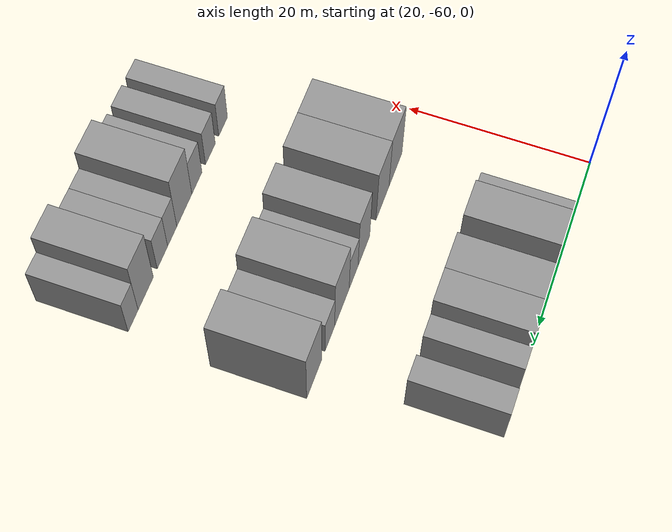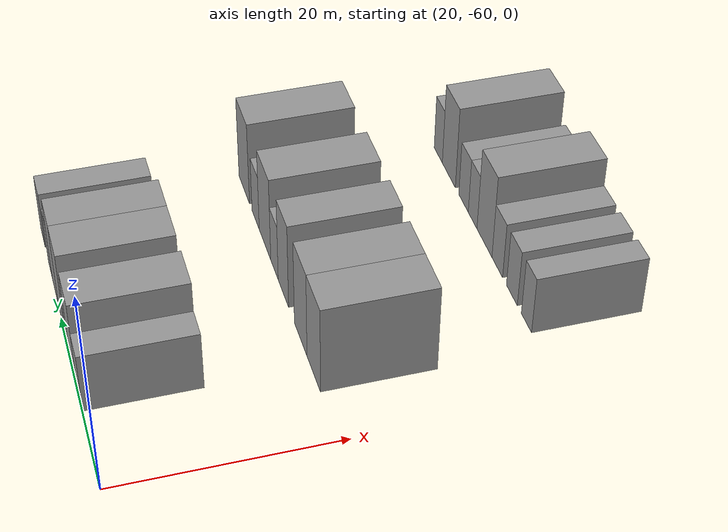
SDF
<sdf version="1.6">
 <world name="default">
  <model name="building_39">
   <static>1</static>
   <pose>25.0000 -49.9786 0 0.000000 0.000000 0.000000</pose>
   <link name="link">
    <pose>0 0 3.00 0 0 0</pose>
    <collision name="collision"><geometry><box><size>10.0000 2.7909 6.0000</size></box></geometry></collision>
    <visual name="visual">
     <cast_shadows>0</cast_shadows>
     <geometry><box><size>10.0000 2.7909 6.0000</size></box></geometry>
     <material>
      <script>
       <uri>model://grey_wall/materials/scripts</uri>
       <uri>model://grey_wall/materials/textures</uri>
       <name>vrc/grey_wall</name>
      </script>
     </material>
    </visual>
   </link>
  </model>
  <model name="building_40">
   <static>1</static>
   <pose>25.0000 -46.5262 0 0.000000 0.000000 0.000000</pose>
   <link name="link">
    <pose>0 0 4.50 0 0 0</pose>
    <collision name="collision"><geometry><box><size>10.0000 4.1139 9.0000</size></box></geometry></collision>
    <visual name="visual">
     <cast_shadows>0</cast_shadows>
     <geometry><box><size>10.0000 4.1139 9.0000</size></box></geometry>
     <material>
      <script>
       <uri>model://grey_wall/materials/scripts</uri>
       <uri>model://grey_wall/materials/textures</uri>
       <name>vrc/grey_wall</name>
      </script>
     </material>
    </visual>
   </link>
  </model>
  <model name="building_41">
   <static>1</static>
   <pose>25.0000 -40.4733 0 0.000000 0.000000 0.000000</pose>
   <link name="link">
    <pose>0 0 4.50 0 0 0</pose>
    <collision name="collision"><geometry><box><size>10.0000 3.9919 9.0000</size></box></geometry></collision>
    <visual name="visual">
     <cast_shadows>0</cast_shadows>
     <geometry><box><size>10.0000 3.9919 9.0000</size></box></geometry>
     <material>
      <script>
       <uri>model://grey_wall/materials/scripts</uri>
       <uri>model://grey_wall/materials/textures</uri>
       <name>vrc/grey_wall</name>
      </script>
     </material>
    </visual>
   </link>
  </model>
  <model name="building_42">
   <static>1</static>
   <pose>25.0000 -36.6581 0 0.000000 0.000000 0.000000</pose>
   <link name="link">
    <pose>0 0 4.50 0 0 0</pose>
    <collision name="collision"><geometry><box><size>10.0000 3.6384 9.0000</size></box></geometry></collision>
    <visual name="visual">
     <cast_shadows>0</cast_shadows>
     <geometry><box><size>10.0000 3.6384 9.0000</size></box></geometry>
     <material>
      <script>
       <uri>model://grey_wall/materials/scripts</uri>
       <uri>model://grey_wall/materials/textures</uri>
       <name>vrc/grey_wall</name>
      </script>
     </material>
    </visual>
   </link>
  </model>
  <model name="building_43">
   <static>1</static>
   <pose>25.0000 -33.6172 0 0.000000 0.000000 0.000000</pose>
   <link name="link">
    <pose>0 0 3.00 0 0 0</pose>
    <collision name="collision"><geometry><box><size>10.0000 2.4435 6.0000</size></box></geometry></collision>
    <visual name="visual">
     <cast_shadows>0</cast_shadows>
     <geometry><box><size>10.0000 2.4435 6.0000</size></box></geometry>
     <material>
      <script>
       <uri>model://grey_wall/materials/scripts</uri>
       <uri>model://grey_wall/materials/textures</uri>
       <name>vrc/grey_wall</name>
      </script>
     </material>
    </visual>
   </link>
  </model>
  <model name="building_44">
   <static>1</static>
   <pose>25.0000 -29.0254 0 0.000000 0.000000 0.000000</pose>
   <link name="link">
    <pose>0 0 3.00 0 0 0</pose>
    <collision name="collision"><geometry><box><size>10.0000 2.7402 6.0000</size></box></geometry></collision>
    <visual name="visual">
     <cast_shadows>0</cast_shadows>
     <geometry><box><size>10.0000 2.7402 6.0000</size></box></geometry>
     <material>
      <script>
       <uri>model://grey_wall/materials/scripts</uri>
       <uri>model://grey_wall/materials/textures</uri>
       <name>vrc/grey_wall</name>
      </script>
     </material>
    </visual>
   </link>
  </model>
  <model name="building_143">
   <static>1</static>
   <pose>44.0000 -52.1991 0 0.000000 0.000000 0.000000</pose>
   <link name="link">
    <pose>0 0 4.50 0 0 0</pose>
    <collision name="collision"><geometry><box><size>10.0000 4.3223 9.0000</size></box></geometry></collision>
    <visual name="visual">
     <cast_shadows>0</cast_shadows>
     <geometry><box><size>10.0000 4.3223 9.0000</size></box></geometry>
     <material>
      <script>
       <uri>model://grey_wall/materials/scripts</uri>
       <uri>model://grey_wall/materials/textures</uri>
       <name>vrc/grey_wall</name>
      </script>
     </material>
    </visual>
   </link>
  </model>
  <model name="building_144">
   <static>1</static>
   <pose>44.0000 -47.9372 0 0.000000 0.000000 0.000000</pose>
   <link name="link">
    <pose>0 0 4.50 0 0 0</pose>
    <collision name="collision"><geometry><box><size>10.0000 4.2014 9.0000</size></box></geometry></collision>
    <visual name="visual">
     <cast_shadows>0</cast_shadows>
     <geometry><box><size>10.0000 4.2014 9.0000</size></box></geometry>
     <material>
      <script>
       <uri>model://grey_wall/materials/scripts</uri>
       <uri>model://grey_wall/materials/textures</uri>
       <name>vrc/grey_wall</name>
      </script>
     </material>
    </visual>
   </link>
  </model>
  <model name="building_145">
   <static>1</static>
   <pose>44.0000 -41.9988 0 0.000000 0.000000 0.000000</pose>
   <link name="link">
    <pose>0 0 4.50 0 0 0</pose>
    <collision name="collision"><geometry><box><size>10.0000 3.6755 9.0000</size></box></geometry></collision>
    <visual name="visual">
     <cast_shadows>0</cast_shadows>
     <geometry><box><size>10.0000 3.6755 9.0000</size></box></geometry>
     <material>
      <script>
       <uri>model://grey_wall/materials/scripts</uri>
       <uri>model://grey_wall/materials/textures</uri>
       <name>vrc/grey_wall</name>
      </script>
     </material>
    </visual>
   </link>
  </model>
  <model name="building_146">
   <static>1</static>
   <pose>44.0000 -38.8057 0 0.000000 0.000000 0.000000</pose>
   <link name="link">
    <pose>0 0 3.00 0 0 0</pose>
    <collision name="collision"><geometry><box><size>10.0000 2.7106 6.0000</size></box></geometry></collision>
    <visual name="visual">
     <cast_shadows>0</cast_shadows>
     <geometry><box><size>10.0000 2.7106 6.0000</size></box></geometry>
     <material>
      <script>
       <uri>model://grey_wall/materials/scripts</uri>
       <uri>model://grey_wall/materials/textures</uri>
       <name>vrc/grey_wall</name>
      </script>
     </material>
    </visual>
   </link>
  </model>
  <model name="building_147">
   <static>1</static>
   <pose>44.0000 -35.2729 0 0.000000 0.000000 0.000000</pose>
   <link name="link">
    <pose>0 0 4.50 0 0 0</pose>
    <collision name="collision"><geometry><box><size>10.0000 4.3549 9.0000</size></box></geometry></collision>
    <visual name="visual">
     <cast_shadows>0</cast_shadows>
     <geometry><box><size>10.0000 4.3549 9.0000</size></box></geometry>
     <material>
      <script>
       <uri>model://grey_wall/materials/scripts</uri>
       <uri>model://grey_wall/materials/textures</uri>
       <name>vrc/grey_wall</name>
      </script>
     </material>
    </visual>
   </link>
  </model>
  <model name="building_148">
   <static>1</static>
   <pose>44.0000 -31.6791 0 0.000000 0.000000 0.000000</pose>
   <link name="link">
    <pose>0 0 3.00 0 0 0</pose>
    <collision name="collision"><geometry><box><size>10.0000 2.8328 6.0000</size></box></geometry></collision>
    <visual name="visual">
     <cast_shadows>0</cast_shadows>
     <geometry><box><size>10.0000 2.8328 6.0000</size></box></geometry>
     <material>
      <script>
       <uri>model://grey_wall/materials/scripts</uri>
       <uri>model://grey_wall/materials/textures</uri>
       <name>vrc/grey_wall</name>
      </script>
     </material>
    </visual>
   </link>
  </model>
  <model name="building_149">
   <static>1</static>
   <pose>44.0000 -27.1344 0 0.000000 0.000000 0.000000</pose>
   <link name="link">
    <pose>0 0 4.50 0 0 0</pose>
    <collision name="collision"><geometry><box><size>10.0000 4.2567 9.0000</size></box></geometry></collision>
    <visual name="visual">
     <cast_shadows>0</cast_shadows>
     <geometry><box><size>10.0000 4.2567 9.0000</size></box></geometry>
     <material>
      <script>
       <uri>model://grey_wall/materials/scripts</uri>
       <uri>model://grey_wall/materials/textures</uri>
       <name>vrc/grey_wall</name>
      </script>
     </material>
    </visual>
   </link>
  </model>
  <model name="building_258">
   <static>1</static>
   <pose>63.0000 -51.0818 0 0.000000 0.000000 0.000000</pose>
   <link name="link">
    <pose>0 0 3.00 0 0 0</pose>
    <collision name="collision"><geometry><box><size>10.0000 2.5048 6.0000</size></box></geometry></collision>
    <visual name="visual">
     <cast_shadows>0</cast_shadows>
     <geometry><box><size>10.0000 2.5048 6.0000</size></box></geometry>
     <material>
      <script>
       <uri>model://grey_wall/materials/scripts</uri>
       <uri>model://grey_wall/materials/textures</uri>
       <name>vrc/grey_wall</name>
      </script>
     </material>
    </visual>
   </link>
  </model>
  <model name="building_259">
   <static>1</static>
   <pose>63.0000 -47.4509 0 0.000000 0.000000 0.000000</pose>
   <link name="link">
    <pose>0 0 3.00 0 0 0</pose>
    <collision name="collision"><geometry><box><size>10.0000 2.7570 6.0000</size></box></geometry></collision>
    <visual name="visual">
     <cast_shadows>0</cast_shadows>
     <geometry><box><size>10.0000 2.7570 6.0000</size></box></geometry>
     <material>
      <script>
       <uri>model://grey_wall/materials/scripts</uri>
       <uri>model://grey_wall/materials/textures</uri>
       <name>vrc/grey_wall</name>
      </script>
     </material>
    </visual>
   </link>
  </model>
  <model name="building_260">
   <static>1</static>
   <pose>63.0000 -43.6751 0 0.000000 0.000000 0.000000</pose>
   <link name="link">
    <pose>0 0 3.00 0 0 0</pose>
    <collision name="collision"><geometry><box><size>10.0000 2.7946 6.0000</size></box></geometry></collision>
    <visual name="visual">
     <cast_shadows>0</cast_shadows>
     <geometry><box><size>10.0000 2.7946 6.0000</size></box></geometry>
     <material>
      <script>
       <uri>model://grey_wall/materials/scripts</uri>
       <uri>model://grey_wall/materials/textures</uri>
       <name>vrc/grey_wall</name>
      </script>
     </material>
    </visual>
   </link>
  </model>
  <model name="building_261">
   <static>1</static>
   <pose>63.0000 -40.2397 0 0.000000 0.000000 0.000000</pose>
   <link name="link">
    <pose>0 0 4.50 0 0 0</pose>
    <collision name="collision"><geometry><box><size>10.0000 4.0763 9.0000</size></box></geometry></collision>
    <visual name="visual">
     <cast_shadows>0</cast_shadows>
     <geometry><box><size>10.0000 4.0763 9.0000</size></box></geometry>
     <material>
      <script>
       <uri>model://grey_wall/materials/scripts</uri>
       <uri>model://grey_wall/materials/textures</uri>
       <name>vrc/grey_wall</name>
      </script>
     </material>
    </visual>
   </link>
  </model>
  <model name="building_262">
   <static>1</static>
   <pose>63.0000 -36.9821 0 0.000000 0.000000 0.000000</pose>
   <link name="link">
    <pose>0 0 3.00 0 0 0</pose>
    <collision name="collision"><geometry><box><size>10.0000 2.4388 6.0000</size></box></geometry></collision>
    <visual name="visual">
     <cast_shadows>0</cast_shadows>
     <geometry><box><size>10.0000 2.4388 6.0000</size></box></geometry>
     <material>
      <script>
       <uri>model://grey_wall/materials/scripts</uri>
       <uri>model://grey_wall/materials/textures</uri>
       <name>vrc/grey_wall</name>
      </script>
     </material>
    </visual>
   </link>
  </model>
  <model name="building_263">
   <static>1</static>
   <pose>63.0000 -34.4046 0 0.000000 0.000000 0.000000</pose>
   <link name="link">
    <pose>0 0 3.00 0 0 0</pose>
    <collision name="collision"><geometry><box><size>10.0000 2.7162 6.0000</size></box></geometry></collision>
    <visual name="visual">
     <cast_shadows>0</cast_shadows>
     <geometry><box><size>10.0000 2.7162 6.0000</size></box></geometry>
     <material>
      <script>
       <uri>model://grey_wall/materials/scripts</uri>
       <uri>model://grey_wall/materials/textures</uri>
       <name>vrc/grey_wall</name>
      </script>
     </material>
    </visual>
   </link>
  </model>
  <model name="building_264">
   <static>1</static>
   <pose>63.0000 -30.1054 0 0.000000 0.000000 0.000000</pose>
   <link name="link">
    <pose>0 0 4.50 0 0 0</pose>
    <collision name="collision"><geometry><box><size>10.0000 3.8822 9.0000</size></box></geometry></collision>
    <visual name="visual">
     <cast_shadows>0</cast_shadows>
     <geometry><box><size>10.0000 3.8822 9.0000</size></box></geometry>
     <material>
      <script>
       <uri>model://grey_wall/materials/scripts</uri>
       <uri>model://grey_wall/materials/textures</uri>
       <name>vrc/grey_wall</name>
      </script>
     </material>
    </visual>
   </link>
  </model>
  <model name="building_265">
   <static>1</static>
   <pose>63.0000 -26.9157 0 0.000000 0.000000 0.000000</pose>
   <link name="link">
    <pose>0 0 3.00 0 0 0</pose>
    <collision name="collision"><geometry><box><size>10.0000 2.4972 6.0000</size></box></geometry></collision>
    <visual name="visual">
     <cast_shadows>0</cast_shadows>
     <geometry><box><size>10.0000 2.4972 6.0000</size></box></geometry>
     <material>
      <script>
       <uri>model://grey_wall/materials/scripts</uri>
       <uri>model://grey_wall/materials/textures</uri>
       <name>vrc/grey_wall</name>
      </script>
     </material>
    </visual>
   </link>
  </model>
 </world>
</sdf>
